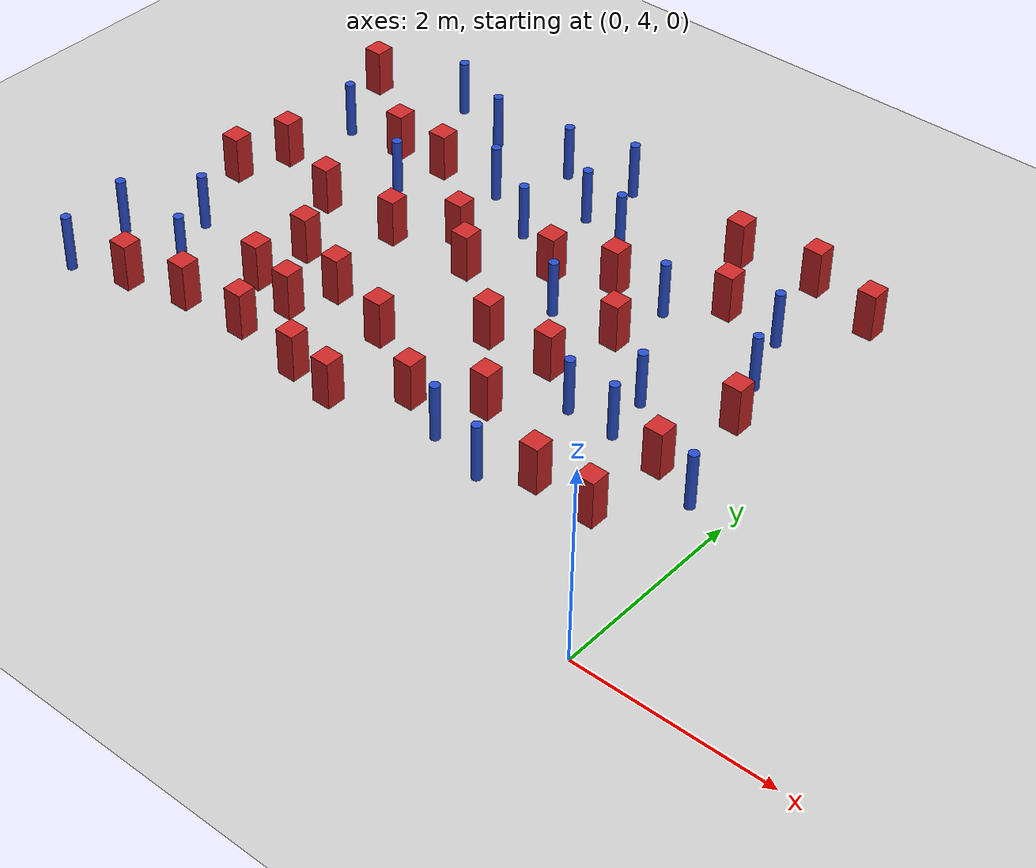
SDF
<sdf version="1.6">
 <world name="default">
  <model name="ground_plane">
   <static>1</static>
   <link name="link">
    <collision name="collision">
     <geometry><plane><normal>0 0 1</normal><size>100 100</size></plane></geometry>
     <surface><friction><ode><mu>100</mu><mu2>50</mu2></ode></friction></surface>
    </collision>
    <visual name="visual">
     <cast_shadows>0</cast_shadows>
     <geometry><plane><normal>0 0 1</normal><size>100 100</size></plane></geometry>
     <material>
      <ambient>1.0 1.0 1.0 1.0</ambient>
      <diffuse>0.8 0.8 0.8 1.0</diffuse>
      <specular>0.01 0.01 0.01 1.000000</specular>
     </material>
    </visual>
   </link>
  </model>
  <model name="pole_obstacle13">
   <static>true</static>
   <pose>-1.5103843144 6.82598550573 -3.09024884793e-07 -7.19054271912e-07 -2.11315075134e-07 -1.93935509265e-07</pose>
   <link name="link">
    <pose>0 0 0.3 0 -0 0</pose>
    <inertial>
     <mass>1</mass>
     <inertia><ixx>0.145833</ixx><ixy>0</ixy><ixz>0</ixz><iyy>0.145833</iyy><iyz>0</iyz><izz>0.125</izz></inertia>
    </inertial>
    <collision name="collision">
     <geometry><cylinder><radius>0.05</radius><length>.6</length></cylinder></geometry>
    </collision>
    <visual name="visual">
     <geometry><cylinder><radius>0.05</radius><length>.6</length></cylinder></geometry>
     <material>
      <script><name>Gazebo/Blue</name><uri>file://media/materials/scripts/gazebo.material</uri></script>
     </material>
    </visual>
   </link>
  </model>
  <model name="square_post_obstacle10">
   <static>true</static>
   <pose>-5.8417076227 8.38276541855 -4.36207812815e-07 3.75137919937e-06 9.77721102514e-07 2.47381364184e-05</pose>
   <link name="link">
    <pose>0 0 0.25 0 -0 0</pose>
    <inertial>
     <mass>100</mass>
     <inertia>
      <ixx>0.166667</ixx>
      <ixy>0</ixy>
      <ixz>0</ixz>
      <iyy>0.166667</iyy>
      <iyz>0</iyz>
      <izz>0.166667</izz>
     </inertia>
    </inertial>
    <collision name="collision"><geometry><box><size>.2 .2 .5</size></box></geometry></collision>
    <visual name="visual">
     <geometry><box><size>.2 .2 .5</size></box></geometry>
     <material>
      <script><name>Gazebo/Red</name><uri>file://media/materials/scripts/gazebo.material</uri></script>
     </material>
    </visual>
   </link>
  </model>
  <model name="square_post_obstacle18">
   <static>true</static>
   <pose>-6.27693186465 5.03771833636 -4.36207812815e-07 3.75137919937e-06 9.77721102514e-07 2.47381364184e-05</pose>
   <link name="link">
    <pose>0 0 0.25 0 -0 0</pose>
    <inertial>
     <mass>100</mass>
     <inertia>
      <ixx>0.166667</ixx>
      <ixy>0</ixy>
      <ixz>0</ixz>
      <iyy>0.166667</iyy>
      <iyz>0</iyz>
      <izz>0.166667</izz>
     </inertia>
    </inertial>
    <collision name="collision"><geometry><box><size>.2 .2 .5</size></box></geometry></collision>
    <visual name="visual">
     <geometry><box><size>.2 .2 .5</size></box></geometry>
     <material>
      <script><name>Gazebo/Red</name><uri>file://media/materials/scripts/gazebo.material</uri></script>
     </material>
    </visual>
   </link>
  </model>
  <model name="pole_obstacle27">
   <static>true</static>
   <pose>-1.10606535047 8.32548842689 -3.09024884793e-07 -7.19054271912e-07 -2.1131507515e-07 -1.93935509273e-07</pose>
   <link name="link">
    <pose>0 0 0.3 0 -0 0</pose>
    <inertial>
     <mass>1</mass>
     <inertia><ixx>0.145833</ixx><ixy>0</ixy><ixz>0</ixz><iyy>0.145833</iyy><iyz>0</iyz><izz>0.125</izz></inertia>
    </inertial>
    <collision name="collision">
     <geometry><cylinder><radius>0.05</radius><length>.6</length></cylinder></geometry>
    </collision>
    <visual name="visual">
     <geometry><cylinder><radius>0.05</radius><length>.6</length></cylinder></geometry>
     <material>
      <script><name>Gazebo/Blue</name><uri>file://media/materials/scripts/gazebo.material</uri></script>
     </material>
    </visual>
   </link>
  </model>
  <model name="square_post_obstacle20">
   <static>true</static>
   <pose>-3.0840000582 5.51326991993 -4.36207812815e-07 3.75137919937e-06 9.77721102514e-07 2.47381364184e-05</pose>
   <link name="link">
    <pose>0 0 0.25 0 -0 0</pose>
    <inertial>
     <mass>100</mass>
     <inertia>
      <ixx>0.166667</ixx>
      <ixy>0</ixy>
      <ixz>0</ixz>
      <iyy>0.166667</iyy>
      <iyz>0</iyz>
      <izz>0.166667</izz>
     </inertia>
    </inertial>
    <collision name="collision"><geometry><box><size>.2 .2 .5</size></box></geometry></collision>
    <visual name="visual">
     <geometry><box><size>.2 .2 .5</size></box></geometry>
     <material>
      <script><name>Gazebo/Red</name><uri>file://media/materials/scripts/gazebo.material</uri></script>
     </material>
    </visual>
   </link>
  </model>
  <model name="square_post_obstacle21">
   <static>true</static>
   <pose>-2.7572223861 8.02089633392 -4.36207812815e-07 3.75137919937e-06 9.77721102514e-07 2.47381364184e-05</pose>
   <link name="link">
    <pose>0 0 0.25 0 -0 0</pose>
    <inertial>
     <mass>100</mass>
     <inertia>
      <ixx>0.166667</ixx>
      <ixy>0</ixy>
      <ixz>0</ixz>
      <iyy>0.166667</iyy>
      <iyz>0</iyz>
      <izz>0.166667</izz>
     </inertia>
    </inertial>
    <collision name="collision"><geometry><box><size>.2 .2 .5</size></box></geometry></collision>
    <visual name="visual">
     <geometry><box><size>.2 .2 .5</size></box></geometry>
     <material>
      <script><name>Gazebo/Red</name><uri>file://media/materials/scripts/gazebo.material</uri></script>
     </material>
    </visual>
   </link>
  </model>
  <model name="pole_obstacle37">
   <static>true</static>
   <pose>-3.94610048355 8.08920439307 -3.09024884848e-07 -7.19054271902e-07 -2.11315075199e-07 -1.93935509286e-07</pose>
   <link name="link">
    <pose>0 0 0.3 0 -0 0</pose>
    <inertial>
     <mass>1</mass>
     <inertia><ixx>0.145833</ixx><ixy>0</ixy><ixz>0</ixz><iyy>0.145833</iyy><iyz>0</iyz><izz>0.125</izz></inertia>
    </inertial>
    <collision name="collision">
     <geometry><cylinder><radius>0.05</radius><length>.6</length></cylinder></geometry>
    </collision>
    <visual name="visual">
     <geometry><cylinder><radius>0.05</radius><length>.6</length></cylinder></geometry>
     <material>
      <script><name>Gazebo/Blue</name><uri>file://media/materials/scripts/gazebo.material</uri></script>
     </material>
    </visual>
   </link>
  </model>
  <model name="pole_obstacle42">
   <static>true</static>
   <pose>-0.370126715378 6.04942932822 -3.09024884793e-07 -7.19054271912e-07 -2.1131507513e-07 -1.93935509262e-07</pose>
   <link name="link">
    <pose>0 0 0.3 0 -0 0</pose>
    <inertial>
     <mass>1</mass>
     <inertia><ixx>0.145833</ixx><ixy>0</ixy><ixz>0</ixz><iyy>0.145833</iyy><iyz>0</iyz><izz>0.125</izz></inertia>
    </inertial>
    <collision name="collision">
     <geometry><cylinder><radius>0.05</radius><length>.6</length></cylinder></geometry>
    </collision>
    <visual name="visual">
     <geometry><cylinder><radius>0.05</radius><length>.6</length></cylinder></geometry>
     <material>
      <script><name>Gazebo/Blue</name><uri>file://media/materials/scripts/gazebo.material</uri></script>
     </material>
    </visual>
   </link>
  </model>
  <model name="square_post_obstacle37">
   <static>true</static>
   <pose>-2.24202608033 7.36843365872 -4.36207812815e-07 3.75137919937e-06 9.77721102514e-07 2.47381364184e-05</pose>
   <link name="link">
    <pose>0 0 0.25 0 -0 0</pose>
    <inertial>
     <mass>100</mass>
     <inertia>
      <ixx>0.166667</ixx>
      <ixy>0</ixy>
      <ixz>0</ixz>
      <iyy>0.166667</iyy>
      <iyz>0</iyz>
      <izz>0.166667</izz>
     </inertia>
    </inertial>
    <collision name="collision"><geometry><box><size>.2 .2 .5</size></box></geometry></collision>
    <visual name="visual">
     <geometry><box><size>.2 .2 .5</size></box></geometry>
     <material>
      <script><name>Gazebo/Red</name><uri>file://media/materials/scripts/gazebo.material</uri></script>
     </material>
    </visual>
   </link>
  </model>
  <model name="pole_obstacle52">
   <static>true</static>
   <pose>-6.92466511693 5.57828400408 -3.09024884793e-07 -7.19054271911e-07 -2.1131507516e-07 -1.93935509277e-07</pose>
   <link name="link">
    <pose>0 0 0.3 0 -0 0</pose>
    <inertial>
     <mass>1</mass>
     <inertia><ixx>0.145833</ixx><ixy>0</ixy><ixz>0</ixz><iyy>0.145833</iyy><iyz>0</iyz><izz>0.125</izz></inertia>
    </inertial>
    <collision name="collision">
     <geometry><cylinder><radius>0.05</radius><length>.6</length></cylinder></geometry>
    </collision>
    <visual name="visual">
     <geometry><cylinder><radius>0.05</radius><length>.6</length></cylinder></geometry>
     <material>
      <script><name>Gazebo/Blue</name><uri>file://media/materials/scripts/gazebo.material</uri></script>
     </material>
    </visual>
   </link>
  </model>
  <model name="square_post_obstacle46">
   <static>true</static>
   <pose>-5.26915123723 8.3967949529 -4.36207812815e-07 3.75137919937e-06 9.77721102514e-07 2.47381364184e-05</pose>
   <link name="link">
    <pose>0 0 0.25 0 -0 0</pose>
    <inertial>
     <mass>100</mass>
     <inertia>
      <ixx>0.166667</ixx>
      <ixy>0</ixy>
      <ixz>0</ixz>
      <iyy>0.166667</iyy>
      <iyz>0</iyz>
      <izz>0.166667</izz>
     </inertia>
    </inertial>
    <collision name="collision"><geometry><box><size>.2 .2 .5</size></box></geometry></collision>
    <visual name="visual">
     <geometry><box><size>.2 .2 .5</size></box></geometry>
     <material>
      <script><name>Gazebo/Red</name><uri>file://media/materials/scripts/gazebo.material</uri></script>
     </material>
    </visual>
   </link>
  </model>
  <model name="square_post_obstacle47">
   <static>true</static>
   <pose>-5.64149532033 5.18333810059 -4.36207812815e-07 3.75137919937e-06 9.77721102514e-07 2.47381364184e-05</pose>
   <link name="link">
    <pose>0 0 0.25 0 -0 0</pose>
    <inertial>
     <mass>100</mass>
     <inertia>
      <ixx>0.166667</ixx>
      <ixy>0</ixy>
      <ixz>0</ixz>
      <iyy>0.166667</iyy>
      <iyz>0</iyz>
      <izz>0.166667</izz>
     </inertia>
    </inertial>
    <collision name="collision"><geometry><box><size>.2 .2 .5</size></box></geometry></collision>
    <visual name="visual">
     <geometry><box><size>.2 .2 .5</size></box></geometry>
     <material>
      <script><name>Gazebo/Red</name><uri>file://media/materials/scripts/gazebo.material</uri></script>
     </material>
    </visual>
   </link>
  </model>
  <model name="pole_obstacle64">
   <static>true</static>
   <pose>-3.5839125788 9.35323200329 -3.09024884848e-07 -7.19054271902e-07 -2.11315075199e-07 -1.93935509286e-07</pose>
   <link name="link">
    <pose>0 0 0.3 0 -0 0</pose>
    <inertial>
     <mass>1</mass>
     <inertia><ixx>0.145833</ixx><ixy>0</ixy><ixz>0</ixz><iyy>0.145833</iyy><iyz>0</iyz><izz>0.125</izz></inertia>
    </inertial>
    <collision name="collision">
     <geometry><cylinder><radius>0.05</radius><length>.6</length></cylinder></geometry>
    </collision>
    <visual name="visual">
     <geometry><cylinder><radius>0.05</radius><length>.6</length></cylinder></geometry>
     <material>
      <script><name>Gazebo/Blue</name><uri>file://media/materials/scripts/gazebo.material</uri></script>
     </material>
    </visual>
   </link>
  </model>
  <model name="pole_obstacle69">
   <static>true</static>
   <pose>-1.96349967628 5.13196765469 -3.09024884793e-07 -7.19054271912e-07 -2.1131507513e-07 -1.93935509262e-07</pose>
   <link name="link">
    <pose>0 0 0.3 0 -0 0</pose>
    <inertial>
     <mass>1</mass>
     <inertia><ixx>0.145833</ixx><ixy>0</ixy><ixz>0</ixz><iyy>0.145833</iyy><iyz>0</iyz><izz>0.125</izz></inertia>
    </inertial>
    <collision name="collision">
     <geometry><cylinder><radius>0.05</radius><length>.6</length></cylinder></geometry>
    </collision>
    <visual name="visual">
     <geometry><cylinder><radius>0.05</radius><length>.6</length></cylinder></geometry>
     <material>
      <script><name>Gazebo/Blue</name><uri>file://media/materials/scripts/gazebo.material</uri></script>
     </material>
    </visual>
   </link>
  </model>
  <model name="pole_obstacle70">
   <static>true</static>
   <pose>-6.86718325011 4.83738553798 -3.09024884793e-07 -7.19054271911e-07 -2.1131507516e-07 -1.93935509277e-07</pose>
   <link name="link">
    <pose>0 0 0.3 0 -0 0</pose>
    <inertial>
     <mass>1</mass>
     <inertia><ixx>0.145833</ixx><ixy>0</ixy><ixz>0</ixz><iyy>0.145833</iyy><iyz>0</iyz><izz>0.125</izz></inertia>
    </inertial>
    <collision name="collision">
     <geometry><cylinder><radius>0.05</radius><length>.6</length></cylinder></geometry>
    </collision>
    <visual name="visual">
     <geometry><cylinder><radius>0.05</radius><length>.6</length></cylinder></geometry>
     <material>
      <script><name>Gazebo/Blue</name><uri>file://media/materials/scripts/gazebo.material</uri></script>
     </material>
    </visual>
   </link>
  </model>
  <model name="square_post_obstacle60">
   <static>true</static>
   <pose>-4.93671143467 5.22909456293 -4.36207812815e-07 3.75137919937e-06 9.77721102514e-07 2.47381364184e-05</pose>
   <link name="link">
    <pose>0 0 0.25 0 -0 0</pose>
    <inertial>
     <mass>100</mass>
     <inertia>
      <ixx>0.166667</ixx>
      <ixy>0</ixy>
      <ixz>0</ixz>
      <iyy>0.166667</iyy>
      <iyz>0</iyz>
      <izz>0.166667</izz>
     </inertia>
    </inertial>
    <collision name="collision"><geometry><box><size>.2 .2 .5</size></box></geometry></collision>
    <visual name="visual">
     <geometry><box><size>.2 .2 .5</size></box></geometry>
     <material>
      <script><name>Gazebo/Red</name><uri>file://media/materials/scripts/gazebo.material</uri></script>
     </material>
    </visual>
   </link>
  </model>
  <model name="square_post_obstacle63">
   <static>true</static>
   <pose>-3.33756473522 7.77930389055 -4.36207812815e-07 3.75137919937e-06 9.77721102514e-07 2.47381364184e-05</pose>
   <link name="link">
    <pose>0 0 0.25 0 -0 0</pose>
    <inertial>
     <mass>100</mass>
     <inertia>
      <ixx>0.166667</ixx>
      <ixy>0</ixy>
      <ixz>0</ixz>
      <iyy>0.166667</iyy>
      <iyz>0</iyz>
      <izz>0.166667</izz>
     </inertia>
    </inertial>
    <collision name="collision"><geometry><box><size>.2 .2 .5</size></box></geometry></collision>
    <visual name="visual">
     <geometry><box><size>.2 .2 .5</size></box></geometry>
     <material>
      <script><name>Gazebo/Red</name><uri>file://media/materials/scripts/gazebo.material</uri></script>
     </material>
    </visual>
   </link>
  </model>
  <model name="square_post_obstacle69">
   <static>true</static>
   <pose>-5.74207533981 7.19794412449 -4.36207812815e-07 3.75137919937e-06 9.77721102514e-07 2.47381364184e-05</pose>
   <link name="link">
    <pose>0 0 0.25 0 -0 0</pose>
    <inertial>
     <mass>100</mass>
     <inertia>
      <ixx>0.166667</ixx>
      <ixy>0</ixy>
      <ixz>0</ixz>
      <iyy>0.166667</iyy>
      <iyz>0</iyz>
      <izz>0.166667</izz>
     </inertia>
    </inertial>
    <collision name="collision"><geometry><box><size>.2 .2 .5</size></box></geometry></collision>
    <visual name="visual">
     <geometry><box><size>.2 .2 .5</size></box></geometry>
     <material>
      <script><name>Gazebo/Red</name><uri>file://media/materials/scripts/gazebo.material</uri></script>
     </material>
    </visual>
   </link>
  </model>
  <model name="pole_obstacle81">
   <static>true</static>
   <pose>-3.14927332118 8.59331735978 -3.09024884848e-07 -7.19054271902e-07 -2.11315075199e-07 -1.93935509286e-07</pose>
   <link name="link">
    <pose>0 0 0.3 0 -0 0</pose>
    <inertial>
     <mass>1</mass>
     <inertia><ixx>0.145833</ixx><ixy>0</ixy><ixz>0</ixz><iyy>0.145833</iyy><iyz>0</iyz><izz>0.125</izz></inertia>
    </inertial>
    <collision name="collision">
     <geometry><cylinder><radius>0.05</radius><length>.6</length></cylinder></geometry>
    </collision>
    <visual name="visual">
     <geometry><cylinder><radius>0.05</radius><length>.6</length></cylinder></geometry>
     <material>
      <script><name>Gazebo/Blue</name><uri>file://media/materials/scripts/gazebo.material</uri></script>
     </material>
    </visual>
   </link>
  </model>
  <model name="square_post_obstacle78">
   <static>true</static>
   <pose>-4.88525337764 7.22417809671 -4.36207812815e-07 3.75137919937e-06 9.77721102514e-07 2.47381364184e-05</pose>
   <link name="link">
    <pose>0 0 0.25 0 -0 0</pose>
    <inertial>
     <mass>100</mass>
     <inertia>
      <ixx>0.166667</ixx>
      <ixy>0</ixy>
      <ixz>0</ixz>
      <iyy>0.166667</iyy>
      <iyz>0</iyz>
      <izz>0.166667</izz>
     </inertia>
    </inertial>
    <collision name="collision"><geometry><box><size>.2 .2 .5</size></box></geometry></collision>
    <visual name="visual">
     <geometry><box><size>.2 .2 .5</size></box></geometry>
     <material>
      <script><name>Gazebo/Red</name><uri>file://media/materials/scripts/gazebo.material</uri></script>
     </material>
    </visual>
   </link>
  </model>
  <model name="square_post_obstacle81">
   <static>true</static>
   <pose>-4.14859598131 5.11364582191 -4.36207812815e-07 3.75137919937e-06 9.77721102514e-07 2.47381364184e-05</pose>
   <link name="link">
    <pose>0 0 0.25 0 -0 0</pose>
    <inertial>
     <mass>100</mass>
     <inertia>
      <ixx>0.166667</ixx>
      <ixy>0</ixy>
      <ixz>0</ixz>
      <iyy>0.166667</iyy>
      <iyz>0</iyz>
      <izz>0.166667</izz>
     </inertia>
    </inertial>
    <collision name="collision"><geometry><box><size>.2 .2 .5</size></box></geometry></collision>
    <visual name="visual">
     <geometry><box><size>.2 .2 .5</size></box></geometry>
     <material>
      <script><name>Gazebo/Red</name><uri>file://media/materials/scripts/gazebo.material</uri></script>
     </material>
    </visual>
   </link>
  </model>
  <model name="square_post_obstacle84">
   <static>true</static>
   <pose>-1.72384334746 8.40506258448 -4.36207812815e-07 3.75137919937e-06 9.77721102514e-07 2.47381364184e-05</pose>
   <link name="link">
    <pose>0 0 0.25 0 -0 0</pose>
    <inertial>
     <mass>100</mass>
     <inertia>
      <ixx>0.166667</ixx>
      <ixy>0</ixy>
      <ixz>0</ixz>
      <iyy>0.166667</iyy>
      <iyz>0</iyz>
      <izz>0.166667</izz>
     </inertia>
    </inertial>
    <collision name="collision"><geometry><box><size>.2 .2 .5</size></box></geometry></collision>
    <visual name="visual">
     <geometry><box><size>.2 .2 .5</size></box></geometry>
     <material>
      <script><name>Gazebo/Red</name><uri>file://media/materials/scripts/gazebo.material</uri></script>
     </material>
    </visual>
   </link>
  </model>
  <model name="pole_obstacle96">
   <static>true</static>
   <pose>-1.93176764249 6.33158354591 -3.09024884793e-07 -7.19054271912e-07 -2.11315075134e-07 -1.93935509265e-07</pose>
   <link name="link">
    <pose>0 0 0.3 0 -0 0</pose>
    <inertial>
     <mass>1</mass>
     <inertia><ixx>0.145833</ixx><ixy>0</ixy><ixz>0</ixz><iyy>0.145833</iyy><iyz>0</iyz><izz>0.125</izz></inertia>
    </inertial>
    <collision name="collision">
     <geometry><cylinder><radius>0.05</radius><length>.6</length></cylinder></geometry>
    </collision>
    <visual name="visual">
     <geometry><cylinder><radius>0.05</radius><length>.6</length></cylinder></geometry>
     <material>
      <script><name>Gazebo/Blue</name><uri>file://media/materials/scripts/gazebo.material</uri></script>
     </material>
    </visual>
   </link>
  </model>
  <model name="pole_obstacle102">
   <static>true</static>
   <pose>-6.46785904127 8.30639423303 -3.09024884793e-07 -7.19054271912e-07 -2.1131507513e-07 -1.93935509261e-07</pose>
   <link name="link">
    <pose>0 0 0.3 0 -0 0</pose>
    <inertial>
     <mass>1</mass>
     <inertia><ixx>0.145833</ixx><ixy>0</ixy><ixz>0</ixz><iyy>0.145833</iyy><iyz>0</iyz><izz>0.125</izz></inertia>
    </inertial>
    <collision name="collision">
     <geometry><cylinder><radius>0.05</radius><length>.6</length></cylinder></geometry>
    </collision>
    <visual name="visual">
     <geometry><cylinder><radius>0.05</radius><length>.6</length></cylinder></geometry>
     <material>
      <script><name>Gazebo/Blue</name><uri>file://media/materials/scripts/gazebo.material</uri></script>
     </material>
    </visual>
   </link>
  </model>
  <model name="pole_obstacle103">
   <static>true</static>
   <pose>-6.40426767879 6.16035947549 -3.09024884793e-07 -7.19054271911e-07 -2.1131507516e-07 -1.93935509277e-07</pose>
   <link name="link">
    <pose>0 0 0.3 0 -0 0</pose>
    <inertial>
     <mass>1</mass>
     <inertia><ixx>0.145833</ixx><ixy>0</ixy><ixz>0</ixz><iyy>0.145833</iyy><iyz>0</iyz><izz>0.125</izz></inertia>
    </inertial>
    <collision name="collision">
     <geometry><cylinder><radius>0.05</radius><length>.6</length></cylinder></geometry>
    </collision>
    <visual name="visual">
     <geometry><cylinder><radius>0.05</radius><length>.6</length></cylinder></geometry>
     <material>
      <script><name>Gazebo/Blue</name><uri>file://media/materials/scripts/gazebo.material</uri></script>
     </material>
    </visual>
   </link>
  </model>
  <model name="square_post_obstacle99">
   <static>true</static>
   <pose>-1.53079467525 5.39456425044 -4.36207812815e-07 3.75137919937e-06 9.77721102514e-07 2.47381364184e-05</pose>
   <link name="link">
    <pose>0 0 0.25 0 -0 0</pose>
    <inertial>
     <mass>100</mass>
     <inertia>
      <ixx>0.166667</ixx>
      <ixy>0</ixy>
      <ixz>0</ixz>
      <iyy>0.166667</iyy>
      <iyz>0</iyz>
      <izz>0.166667</izz>
     </inertia>
    </inertial>
    <collision name="collision"><geometry><box><size>.2 .2 .5</size></box></geometry></collision>
    <visual name="visual">
     <geometry><box><size>.2 .2 .5</size></box></geometry>
     <material>
      <script><name>Gazebo/Red</name><uri>file://media/materials/scripts/gazebo.material</uri></script>
     </material>
    </visual>
   </link>
  </model>
  <model name="square_post_obstacle101">
   <static>true</static>
   <pose>-2.41649166987 6.64038038441 -4.36207812815e-07 3.75137919937e-06 9.77721102514e-07 2.47381364184e-05</pose>
   <link name="link">
    <pose>0 0 0.25 0 -0 0</pose>
    <inertial>
     <mass>100</mass>
     <inertia>
      <ixx>0.166667</ixx>
      <ixy>0</ixy>
      <ixz>0</ixz>
      <iyy>0.166667</iyy>
      <iyz>0</iyz>
      <izz>0.166667</izz>
     </inertia>
    </inertial>
    <collision name="collision"><geometry><box><size>.2 .2 .5</size></box></geometry></collision>
    <visual name="visual">
     <geometry><box><size>.2 .2 .5</size></box></geometry>
     <material>
      <script><name>Gazebo/Red</name><uri>file://media/materials/scripts/gazebo.material</uri></script>
     </material>
    </visual>
   </link>
  </model>
  <model name="square_post_obstacle104">
   <static>true</static>
   <pose>-3.64421324125 5.04460332312 -4.36207812815e-07 3.75137919937e-06 9.77721102514e-07 2.47381364184e-05</pose>
   <link name="link">
    <pose>0 0 0.25 0 -0 0</pose>
    <inertial>
     <mass>100</mass>
     <inertia>
      <ixx>0.166667</ixx>
      <ixy>0</ixy>
      <ixz>0</ixz>
      <iyy>0.166667</iyy>
      <iyz>0</iyz>
      <izz>0.166667</izz>
     </inertia>
    </inertial>
    <collision name="collision"><geometry><box><size>.2 .2 .5</size></box></geometry></collision>
    <visual name="visual">
     <geometry><box><size>.2 .2 .5</size></box></geometry>
     <material>
      <script><name>Gazebo/Red</name><uri>file://media/materials/scripts/gazebo.material</uri></script>
     </material>
    </visual>
   </link>
  </model>
  <model name="pole_obstacle112">
   <static>true</static>
   <pose>-2.58097163275 5.28739523632 -3.09024884793e-07 -7.19054271912e-07 -2.11315075134e-07 -1.93935509266e-07</pose>
   <link name="link">
    <pose>0 0 0.3 0 -0 0</pose>
    <inertial>
     <mass>1</mass>
     <inertia><ixx>0.145833</ixx><ixy>0</ixy><ixz>0</ixz><iyy>0.145833</iyy><iyz>0</iyz><izz>0.125</izz></inertia>
    </inertial>
    <collision name="collision">
     <geometry><cylinder><radius>0.05</radius><length>.6</length></cylinder></geometry>
    </collision>
    <visual name="visual">
     <geometry><cylinder><radius>0.05</radius><length>.6</length></cylinder></geometry>
     <material>
      <script><name>Gazebo/Blue</name><uri>file://media/materials/scripts/gazebo.material</uri></script>
     </material>
    </visual>
   </link>
  </model>
  <model name="square_post_obstacle118">
   <static>true</static>
   <pose>-6.78817918861 6.99442287246 -4.36207812815e-07 3.75137919937e-06 9.77721102514e-07 2.47381364184e-05</pose>
   <link name="link">
    <pose>0 0 0.25 0 -0 0</pose>
    <inertial>
     <mass>100</mass>
     <inertia>
      <ixx>0.166667</ixx>
      <ixy>0</ixy>
      <ixz>0</ixz>
      <iyy>0.166667</iyy>
      <iyz>0</iyz>
      <izz>0.166667</izz>
     </inertia>
    </inertial>
    <collision name="collision"><geometry><box><size>.2 .2 .5</size></box></geometry></collision>
    <visual name="visual">
     <geometry><box><size>.2 .2 .5</size></box></geometry>
     <material>
      <script><name>Gazebo/Red</name><uri>file://media/materials/scripts/gazebo.material</uri></script>
     </material>
    </visual>
   </link>
  </model>
  <model name="square_post_obstacle119">
   <static>true</static>
   <pose>-3.97484409198 7.27295436491 -4.36207812815e-07 3.75137919937e-06 9.77721102514e-07 2.47381364184e-05</pose>
   <link name="link">
    <pose>0 0 0.25 0 -0 0</pose>
    <inertial>
     <mass>100</mass>
     <inertia>
      <ixx>0.166667</ixx>
      <ixy>0</ixy>
      <ixz>0</ixz>
      <iyy>0.166667</iyy>
      <iyz>0</iyz>
      <izz>0.166667</izz>
     </inertia>
    </inertial>
    <collision name="collision"><geometry><box><size>.2 .2 .5</size></box></geometry></collision>
    <visual name="visual">
     <geometry><box><size>.2 .2 .5</size></box></geometry>
     <material>
      <script><name>Gazebo/Red</name><uri>file://media/materials/scripts/gazebo.material</uri></script>
     </material>
    </visual>
   </link>
  </model>
  <model name="square_post_obstacle124">
   <static>true</static>
   <pose>-4.6377924037 6.19599343212 -4.36207812815e-07 3.75137919937e-06 9.77721102514e-07 2.47381364184e-05</pose>
   <link name="link">
    <pose>0 0 0.25 0 -0 0</pose>
    <inertial>
     <mass>100</mass>
     <inertia>
      <ixx>0.166667</ixx>
      <ixy>0</ixy>
      <ixz>0</ixz>
      <iyy>0.166667</iyy>
      <iyz>0</iyz>
      <izz>0.166667</izz>
     </inertia>
    </inertial>
    <collision name="collision"><geometry><box><size>.2 .2 .5</size></box></geometry></collision>
    <visual name="visual">
     <geometry><box><size>.2 .2 .5</size></box></geometry>
     <material>
      <script><name>Gazebo/Red</name><uri>file://media/materials/scripts/gazebo.material</uri></script>
     </material>
    </visual>
   </link>
  </model>
  <model name="pole_obstacle129">
   <static>true</static>
   <pose>-3.6541476503 8.69945029988 -3.09024884848e-07 -7.19054271902e-07 -2.11315075199e-07 -1.93935509286e-07</pose>
   <link name="link">
    <pose>0 0 0.3 0 -0 0</pose>
    <inertial>
     <mass>1</mass>
     <inertia><ixx>0.145833</ixx><ixy>0</ixy><ixz>0</ixz><iyy>0.145833</iyy><iyz>0</iyz><izz>0.125</izz></inertia>
    </inertial>
    <collision name="collision">
     <geometry><cylinder><radius>0.05</radius><length>.6</length></cylinder></geometry>
    </collision>
    <visual name="visual">
     <geometry><cylinder><radius>0.05</radius><length>.6</length></cylinder></geometry>
     <material>
      <script><name>Gazebo/Blue</name><uri>file://media/materials/scripts/gazebo.material</uri></script>
     </material>
    </visual>
   </link>
  </model>
  <model name="square_post_obstacle126">
   <static>true</static>
   <pose>-0.864493510466 6.24062607536 -4.36207812815e-07 3.75137919937e-06 9.77721102514e-07 2.47381364184e-05</pose>
   <link name="link">
    <pose>0 0 0.25 0 -0 0</pose>
    <inertial>
     <mass>100</mass>
     <inertia>
      <ixx>0.166667</ixx>
      <ixy>0</ixy>
      <ixz>0</ixz>
      <iyy>0.166667</iyy>
      <iyz>0</iyz>
      <izz>0.166667</izz>
     </inertia>
    </inertial>
    <collision name="collision"><geometry><box><size>.2 .2 .5</size></box></geometry></collision>
    <visual name="visual">
     <geometry><box><size>.2 .2 .5</size></box></geometry>
     <material>
      <script><name>Gazebo/Red</name><uri>file://media/materials/scripts/gazebo.material</uri></script>
     </material>
    </visual>
   </link>
  </model>
  <model name="square_post_obstacle127">
   <static>true</static>
   <pose>-1.32509693658 9.25923681967 -4.36207812815e-07 3.75137919937e-06 9.77721102514e-07 2.47381364184e-05</pose>
   <link name="link">
    <pose>0 0 0.25 0 -0 0</pose>
    <inertial>
     <mass>100</mass>
     <inertia>
      <ixx>0.166667</ixx>
      <ixy>0</ixy>
      <ixz>0</ixz>
      <iyy>0.166667</iyy>
      <iyz>0</iyz>
      <izz>0.166667</izz>
     </inertia>
    </inertial>
    <collision name="collision"><geometry><box><size>.2 .2 .5</size></box></geometry></collision>
    <visual name="visual">
     <geometry><box><size>.2 .2 .5</size></box></geometry>
     <material>
      <script><name>Gazebo/Red</name><uri>file://media/materials/scripts/gazebo.material</uri></script>
     </material>
    </visual>
   </link>
  </model>
  <model name="pole_obstacle132">
   <static>true</static>
   <pose>-0.891651294347 7.68689830335 -3.09024884793e-07 -7.19054271912e-07 -2.11315075129e-07 -1.93935509261e-07</pose>
   <link name="link">
    <pose>0 0 0.3 0 -0 0</pose>
    <inertial>
     <mass>1</mass>
     <inertia><ixx>0.145833</ixx><ixy>0</ixy><ixz>0</ixz><iyy>0.145833</iyy><iyz>0</iyz><izz>0.125</izz></inertia>
    </inertial>
    <collision name="collision">
     <geometry><cylinder><radius>0.05</radius><length>.6</length></cylinder></geometry>
    </collision>
    <visual name="visual">
     <geometry><cylinder><radius>0.05</radius><length>.6</length></cylinder></geometry>
     <material>
      <script><name>Gazebo/Blue</name><uri>file://media/materials/scripts/gazebo.material</uri></script>
     </material>
    </visual>
   </link>
  </model>
  <model name="pole_obstacle136">
   <static>true</static>
   <pose>-5.85989620094 9.38991845196 -3.09024884793e-07 -7.19054271912e-07 -2.1131507513e-07 -1.93935509261e-07</pose>
   <link name="link">
    <pose>0 0 0.3 0 -0 0</pose>
    <inertial>
     <mass>1</mass>
     <inertia><ixx>0.145833</ixx><ixy>0</ixy><ixz>0</ixz><iyy>0.145833</iyy><iyz>0</iyz><izz>0.125</izz></inertia>
    </inertial>
    <collision name="collision">
     <geometry><cylinder><radius>0.05</radius><length>.6</length></cylinder></geometry>
    </collision>
    <visual name="visual">
     <geometry><cylinder><radius>0.05</radius><length>.6</length></cylinder></geometry>
     <material>
      <script><name>Gazebo/Blue</name><uri>file://media/materials/scripts/gazebo.material</uri></script>
     </material>
    </visual>
   </link>
  </model>
  <model name="square_post_obstacle138">
   <static>true</static>
   <pose>-5.31217494836 6.46587191299 -4.36207812815e-07 3.75137919937e-06 9.77721102514e-07 2.47381364184e-05</pose>
   <link name="link">
    <pose>0 0 0.25 0 -0 0</pose>
    <inertial>
     <mass>100</mass>
     <inertia>
      <ixx>0.166667</ixx>
      <ixy>0</ixy>
      <ixz>0</ixz>
      <iyy>0.166667</iyy>
      <iyz>0</iyz>
      <izz>0.166667</izz>
     </inertia>
    </inertial>
    <collision name="collision"><geometry><box><size>.2 .2 .5</size></box></geometry></collision>
    <visual name="visual">
     <geometry><box><size>.2 .2 .5</size></box></geometry>
     <material>
      <script><name>Gazebo/Red</name><uri>file://media/materials/scripts/gazebo.material</uri></script>
     </material>
    </visual>
   </link>
  </model>
  <model name="square_post_obstacle139">
   <static>true</static>
   <pose>-2.13319418863 9.15031092347 -4.36207812815e-07 3.75137919937e-06 9.77721102514e-07 2.47381364184e-05</pose>
   <link name="link">
    <pose>0 0 0.25 0 -0 0</pose>
    <inertial>
     <mass>100</mass>
     <inertia>
      <ixx>0.166667</ixx>
      <ixy>0</ixy>
      <ixz>0</ixz>
      <iyy>0.166667</iyy>
      <iyz>0</iyz>
      <izz>0.166667</izz>
     </inertia>
    </inertial>
    <collision name="collision"><geometry><box><size>.2 .2 .5</size></box></geometry></collision>
    <visual name="visual">
     <geometry><box><size>.2 .2 .5</size></box></geometry>
     <material>
      <script><name>Gazebo/Red</name><uri>file://media/materials/scripts/gazebo.material</uri></script>
     </material>
    </visual>
   </link>
  </model>
  <model name="pole_obstacle144">
   <static>true</static>
   <pose>-2.94659768255 7.32939058462 -3.09024884793e-07 -7.19054271912e-07 -2.11315075134e-07 -1.93935509266e-07</pose>
   <link name="link">
    <pose>0 0 0.3 0 -0 0</pose>
    <inertial>
     <mass>1</mass>
     <inertia><ixx>0.145833</ixx><ixy>0</ixy><ixz>0</ixz><iyy>0.145833</iyy><iyz>0</iyz><izz>0.125</izz></inertia>
    </inertial>
    <collision name="collision">
     <geometry><cylinder><radius>0.05</radius><length>.6</length></cylinder></geometry>
    </collision>
    <visual name="visual">
     <geometry><cylinder><radius>0.05</radius><length>.6</length></cylinder></geometry>
     <material>
      <script><name>Gazebo/Blue</name><uri>file://media/materials/scripts/gazebo.material</uri></script>
     </material>
    </visual>
   </link>
  </model>
  <model name="square_post_obstacle140">
   <static>true</static>
   <pose>-4.81923232614 5.72835531247 -4.36207812815e-07 3.75137919937e-06 9.77721102514e-07 2.47381364184e-05</pose>
   <link name="link">
    <pose>0 0 0.25 0 -0 0</pose>
    <inertial>
     <mass>100</mass>
     <inertia>
      <ixx>0.166667</ixx>
      <ixy>0</ixy>
      <ixz>0</ixz>
      <iyy>0.166667</iyy>
      <iyz>0</iyz>
      <izz>0.166667</izz>
     </inertia>
    </inertial>
    <collision name="collision"><geometry><box><size>.2 .2 .5</size></box></geometry></collision>
    <visual name="visual">
     <geometry><box><size>.2 .2 .5</size></box></geometry>
     <material>
      <script><name>Gazebo/Red</name><uri>file://media/materials/scripts/gazebo.material</uri></script>
     </material>
    </visual>
   </link>
  </model>
  <model name="pole_obstacle148">
   <static>true</static>
   <pose>-4.58158038505 8.41439109908 -3.09024884793e-07 -7.19054271912e-07 -2.1131507513e-07 -1.93935509261e-07</pose>
   <link name="link">
    <pose>0 0 0.3 0 -0 0</pose>
    <inertial>
     <mass>1</mass>
     <inertia><ixx>0.145833</ixx><ixy>0</ixy><ixz>0</ixz><iyy>0.145833</iyy><iyz>0</iyz><izz>0.125</izz></inertia>
    </inertial>
    <collision name="collision">
     <geometry><cylinder><radius>0.05</radius><length>.6</length></cylinder></geometry>
    </collision>
    <visual name="visual">
     <geometry><cylinder><radius>0.05</radius><length>.6</length></cylinder></geometry>
     <material>
      <script><name>Gazebo/Blue</name><uri>file://media/materials/scripts/gazebo.material</uri></script>
     </material>
    </visual>
   </link>
  </model>
  <model name="square_post_obstacle157">
   <static>true</static>
   <pose>-6.84445859565 9.13271499633 -4.36207812815e-07 3.75137919937e-06 9.77721102514e-07 2.47381364184e-05</pose>
   <link name="link">
    <pose>0 0 0.25 0 -0 0</pose>
    <inertial>
     <mass>100</mass>
     <inertia>
      <ixx>0.166667</ixx>
      <ixy>0</ixy>
      <ixz>0</ixz>
      <iyy>0.166667</iyy>
      <iyz>0</iyz>
      <izz>0.166667</izz>
     </inertia>
    </inertial>
    <collision name="collision"><geometry><box><size>.2 .2 .5</size></box></geometry></collision>
    <visual name="visual">
     <geometry><box><size>.2 .2 .5</size></box></geometry>
     <material>
      <script><name>Gazebo/Red</name><uri>file://media/materials/scripts/gazebo.material</uri></script>
     </material>
    </visual>
   </link>
  </model>
  <model name="pole_obstacle174">
   <static>true</static>
   <pose>-5.39642534734 7.85179393427 -3.09024884793e-07 -7.19054271911e-07 -2.1131507516e-07 -1.93935509277e-07</pose>
   <link name="link">
    <pose>0 0 0.3 0 -0 0</pose>
    <inertial>
     <mass>1</mass>
     <inertia><ixx>0.145833</ixx><ixy>0</ixy><ixz>0</ixz><iyy>0.145833</iyy><iyz>0</iyz><izz>0.125</izz></inertia>
    </inertial>
    <collision name="collision">
     <geometry><cylinder><radius>0.05</radius><length>.6</length></cylinder></geometry>
    </collision>
    <visual name="visual">
     <geometry><cylinder><radius>0.05</radius><length>.6</length></cylinder></geometry>
     <material>
      <script><name>Gazebo/Blue</name><uri>file://media/materials/scripts/gazebo.material</uri></script>
     </material>
    </visual>
   </link>
  </model>
  <model name="pole_obstacle176">
   <static>true</static>
   <pose>-2.16068462521 7.99994442023 -3.09024884793e-07 -7.19054271912e-07 -2.11315075135e-07 -1.93935509266e-07</pose>
   <link name="link">
    <pose>0 0 0.3 0 -0 0</pose>
    <inertial>
     <mass>1</mass>
     <inertia><ixx>0.145833</ixx><ixy>0</ixy><ixz>0</ixz><iyy>0.145833</iyy><iyz>0</iyz><izz>0.125</izz></inertia>
    </inertial>
    <collision name="collision">
     <geometry><cylinder><radius>0.05</radius><length>.6</length></cylinder></geometry>
    </collision>
    <visual name="visual">
     <geometry><cylinder><radius>0.05</radius><length>.6</length></cylinder></geometry>
     <material>
      <script><name>Gazebo/Blue</name><uri>file://media/materials/scripts/gazebo.material</uri></script>
     </material>
    </visual>
   </link>
  </model>
  <model name="square_post_obstacle177">
   <static>true</static>
   <pose>-0.579442060335 9.04401147225 -4.36207812815e-07 3.75137919937e-06 9.77721102514e-07 2.47381364184e-05</pose>
   <link name="link">
    <pose>0 0 0.25 0 -0 0</pose>
    <inertial>
     <mass>100</mass>
     <inertia>
      <ixx>0.166667</ixx>
      <ixy>0</ixy>
      <ixz>0</ixz>
      <iyy>0.166667</iyy>
      <iyz>0</iyz>
      <izz>0.166667</izz>
     </inertia>
    </inertial>
    <collision name="collision"><geometry><box><size>.2 .2 .5</size></box></geometry></collision>
    <visual name="visual">
     <geometry><box><size>.2 .2 .5</size></box></geometry>
     <material>
      <script><name>Gazebo/Red</name><uri>file://media/materials/scripts/gazebo.material</uri></script>
     </material>
    </visual>
   </link>
  </model>
  <model name="pole_obstacle180">
   <static>true</static>
   <pose>-1.42503581426 6.32174646814 -3.09024884793e-07 -7.19054271912e-07 -2.11315075134e-07 -1.93935509265e-07</pose>
   <link name="link">
    <pose>0 0 0.3 0 -0 0</pose>
    <inertial>
     <mass>1</mass>
     <inertia><ixx>0.145833</ixx><ixy>0</ixy><ixz>0</ixz><iyy>0.145833</iyy><iyz>0</iyz><izz>0.125</izz></inertia>
    </inertial>
    <collision name="collision">
     <geometry><cylinder><radius>0.05</radius><length>.6</length></cylinder></geometry>
    </collision>
    <visual name="visual">
     <geometry><cylinder><radius>0.05</radius><length>.6</length></cylinder></geometry>
     <material>
      <script><name>Gazebo/Blue</name><uri>file://media/materials/scripts/gazebo.material</uri></script>
     </material>
    </visual>
   </link>
  </model>
  <model name="square_post_obstacle185">
   <static>true</static>
   <pose>-3.12783324115 6.62498633595 -4.36207812815e-07 3.75137919937e-06 9.77721102514e-07 2.47381364184e-05</pose>
   <link name="link">
    <pose>0 0 0.25 0 -0 0</pose>
    <inertial>
     <mass>100</mass>
     <inertia>
      <ixx>0.166667</ixx>
      <ixy>0</ixy>
      <ixz>0</ixz>
      <iyy>0.166667</iyy>
      <iyz>0</iyz>
      <izz>0.166667</izz>
     </inertia>
    </inertial>
    <collision name="collision"><geometry><box><size>.2 .2 .5</size></box></geometry></collision>
    <visual name="visual">
     <geometry><box><size>.2 .2 .5</size></box></geometry>
     <material>
      <script><name>Gazebo/Red</name><uri>file://media/materials/scripts/gazebo.material</uri></script>
     </material>
    </visual>
   </link>
  </model>
  <model name="pole_obstacle191">
   <static>true</static>
   <pose>-5.16931845031 9.12494029649 -3.09024884793e-07 -7.19054271912e-07 -2.1131507513e-07 -1.93935509261e-07</pose>
   <link name="link">
    <pose>0 0 0.3 0 -0 0</pose>
    <inertial>
     <mass>1</mass>
     <inertia><ixx>0.145833</ixx><ixy>0</ixy><ixz>0</ixz><iyy>0.145833</iyy><iyz>0</iyz><izz>0.125</izz></inertia>
    </inertial>
    <collision name="collision">
     <geometry><cylinder><radius>0.05</radius><length>.6</length></cylinder></geometry>
    </collision>
    <visual name="visual">
     <geometry><cylinder><radius>0.05</radius><length>.6</length></cylinder></geometry>
     <material>
      <script><name>Gazebo/Blue</name><uri>file://media/materials/scripts/gazebo.material</uri></script>
     </material>
    </visual>
   </link>
  </model>
  <model name="square_post_obstacle203">
   <static>true</static>
   <pose>-3.8928575257 5.97836344642 -4.36207812815e-07 3.75137919937e-06 9.77721102514e-07 2.47381364184e-05</pose>
   <link name="link">
    <pose>0 0 0.25 0 -0 0</pose>
    <inertial>
     <mass>100</mass>
     <inertia>
      <ixx>0.166667</ixx>
      <ixy>0</ixy>
      <ixz>0</ixz>
      <iyy>0.166667</iyy>
      <iyz>0</iyz>
      <izz>0.166667</izz>
     </inertia>
    </inertial>
    <collision name="collision"><geometry><box><size>.2 .2 .5</size></box></geometry></collision>
    <visual name="visual">
     <geometry><box><size>.2 .2 .5</size></box></geometry>
     <material>
      <script><name>Gazebo/Red</name><uri>file://media/materials/scripts/gazebo.material</uri></script>
     </material>
    </visual>
   </link>
  </model>
  <model name="square_post_obstacle210">
   <static>true</static>
   <pose>-0.913498910813 5.37989606924 -4.36207812815e-07 3.75137919937e-06 9.77721102514e-07 2.47381364184e-05</pose>
   <link name="link">
    <pose>0 0 0.25 0 -0 0</pose>
    <inertial>
     <mass>100</mass>
     <inertia>
      <ixx>0.166667</ixx>
      <ixy>0</ixy>
      <ixz>0</ixz>
      <iyy>0.166667</iyy>
      <iyz>0</iyz>
      <izz>0.166667</izz>
     </inertia>
    </inertial>
    <collision name="collision"><geometry><box><size>.2 .2 .5</size></box></geometry></collision>
    <visual name="visual">
     <geometry><box><size>.2 .2 .5</size></box></geometry>
     <material>
      <script><name>Gazebo/Red</name><uri>file://media/materials/scripts/gazebo.material</uri></script>
     </material>
    </visual>
   </link>
  </model>
  <model name="square_post_obstacle220">
   <static>true</static>
   <pose>-6.6025599448 7.53365997467 -4.36207812815e-07 3.75137919937e-06 9.77721102514e-07 2.47381364184e-05</pose>
   <link name="link">
    <pose>0 0 0.25 0 -0 0</pose>
    <inertial>
     <mass>100</mass>
     <inertia>
      <ixx>0.166667</ixx>
      <ixy>0</ixy>
      <ixz>0</ixz>
      <iyy>0.166667</iyy>
      <iyz>0</iyz>
      <izz>0.166667</izz>
     </inertia>
    </inertial>
    <collision name="collision"><geometry><box><size>.2 .2 .5</size></box></geometry></collision>
    <visual name="visual">
     <geometry><box><size>.2 .2 .5</size></box></geometry>
     <material>
      <script><name>Gazebo/Red</name><uri>file://media/materials/scripts/gazebo.material</uri></script>
     </material>
    </visual>
   </link>
  </model>
  <model name="square_post_obstacle222">
   <static>true</static>
   <pose>-5.3515899448 5.85104997467 -4.36207812815e-07 3.75137919937e-06 9.77721102514e-07 2.47381364184e-05</pose>
   <link name="link">
    <pose>0 0 0.25 0 -0 0</pose>
    <inertial>
     <mass>100</mass>
     <inertia>
      <ixx>0.166667</ixx>
      <ixy>0</ixy>
      <ixz>0</ixz>
      <iyy>0.166667</iyy>
      <iyz>0</iyz>
      <izz>0.166667</izz>
     </inertia>
    </inertial>
    <collision name="collision"><geometry><box><size>.2 .2 .5</size></box></geometry></collision>
    <visual name="visual">
     <geometry><box><size>.2 .2 .5</size></box></geometry>
     <material>
      <script><name>Gazebo/Red</name><uri>file://media/materials/scripts/gazebo.material</uri></script>
     </material>
    </visual>
   </link>
  </model>
  <model name="square_post_obstacle225">
   <static>true</static>
   <pose>-2.4809399448 5.84928997467 -4.36207812815e-07 3.75137919937e-06 9.77721102514e-07 2.47381364184e-05</pose>
   <link name="link">
    <pose>0 0 0.25 0 -0 0</pose>
    <inertial>
     <mass>100</mass>
     <inertia>
      <ixx>0.166667</ixx>
      <ixy>0</ixy>
      <ixz>0</ixz>
      <iyy>0.166667</iyy>
      <iyz>0</iyz>
      <izz>0.166667</izz>
     </inertia>
    </inertial>
    <collision name="collision"><geometry><box><size>.2 .2 .5</size></box></geometry></collision>
    <visual name="visual">
     <geometry><box><size>.2 .2 .5</size></box></geometry>
     <material>
      <script><name>Gazebo/Red</name><uri>file://media/materials/scripts/gazebo.material</uri></script>
     </material>
    </visual>
   </link>
  </model>
  <model name="square_post_obstacle233">
   <static>true</static>
   <pose>-4.3618399448 7.61950997467 -4.36207812815e-07 3.75137919937e-06 9.77721102514e-07 2.47381364184e-05</pose>
   <link name="link">
    <pose>0 0 0.25 0 -0 0</pose>
    <inertial>
     <mass>100</mass>
     <inertia>
      <ixx>0.166667</ixx>
      <ixy>0</ixy>
      <ixz>0</ixz>
      <iyy>0.166667</iyy>
      <iyz>0</iyz>
      <izz>0.166667</izz>
     </inertia>
    </inertial>
    <collision name="collision"><geometry><box><size>.2 .2 .5</size></box></geometry></collision>
    <visual name="visual">
     <geometry><box><size>.2 .2 .5</size></box></geometry>
     <material>
      <script><name>Gazebo/Red</name><uri>file://media/materials/scripts/gazebo.material</uri></script>
     </material>
    </visual>
   </link>
  </model>
  <model name="square_post_obstacle234">
   <static>true</static>
   <pose>-0.707385944804 7.15114997467 -4.36207812815e-07 3.75137919937e-06 9.77721102514e-07 2.47381364184e-05</pose>
   <link name="link">
    <pose>0 0 0.25 0 -0 0</pose>
    <inertial>
     <mass>100</mass>
     <inertia>
      <ixx>0.166667</ixx>
      <ixy>0</ixy>
      <ixz>0</ixz>
      <iyy>0.166667</iyy>
      <iyz>0</iyz>
      <izz>0.166667</izz>
     </inertia>
    </inertial>
    <collision name="collision"><geometry><box><size>.2 .2 .5</size></box></geometry></collision>
    <visual name="visual">
     <geometry><box><size>.2 .2 .5</size></box></geometry>
     <material>
      <script><name>Gazebo/Red</name><uri>file://media/materials/scripts/gazebo.material</uri></script>
     </material>
    </visual>
   </link>
  </model>
  <model name="pole_obstacle219">
   <static>true</static>
   <pose>-4.27102999024 9.17201002078 -3.09024884793e-07 -7.19054271912e-07 -2.1131507513e-07 -1.93935509261e-07</pose>
   <link name="link">
    <pose>0 0 0.3 0 -0 0</pose>
    <inertial>
     <mass>1</mass>
     <inertia><ixx>0.145833</ixx><ixy>0</ixy><ixz>0</ixz><iyy>0.145833</iyy><iyz>0</iyz><izz>0.125</izz></inertia>
    </inertial>
    <collision name="collision">
     <geometry><cylinder><radius>0.05</radius><length>.6</length></cylinder></geometry>
    </collision>
    <visual name="visual">
     <geometry><cylinder><radius>0.05</radius><length>.6</length></cylinder></geometry>
     <material>
      <script><name>Gazebo/Blue</name><uri>file://media/materials/scripts/gazebo.material</uri></script>
     </material>
    </visual>
   </link>
  </model>
  <model name="pole_obstacle222">
   <static>true</static>
   <pose>-6.07281999024 5.54373002078 -3.09024884793e-07 -7.19054271911e-07 -2.1131507516e-07 -1.93935509277e-07</pose>
   <link name="link">
    <pose>0 0 0.3 0 -0 0</pose>
    <inertial>
     <mass>1</mass>
     <inertia><ixx>0.145833</ixx><ixy>0</ixy><ixz>0</ixz><iyy>0.145833</iyy><iyz>0</iyz><izz>0.125</izz></inertia>
    </inertial>
    <collision name="collision">
     <geometry><cylinder><radius>0.05</radius><length>.6</length></cylinder></geometry>
    </collision>
    <visual name="visual">
     <geometry><cylinder><radius>0.05</radius><length>.6</length></cylinder></geometry>
     <material>
      <script><name>Gazebo/Blue</name><uri>file://media/materials/scripts/gazebo.material</uri></script>
     </material>
    </visual>
   </link>
  </model>
 </world>
</sdf>
